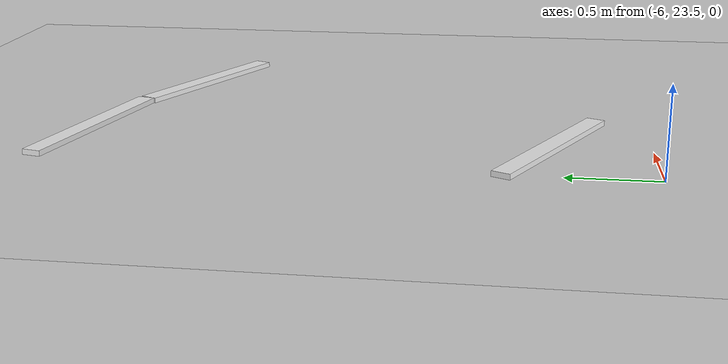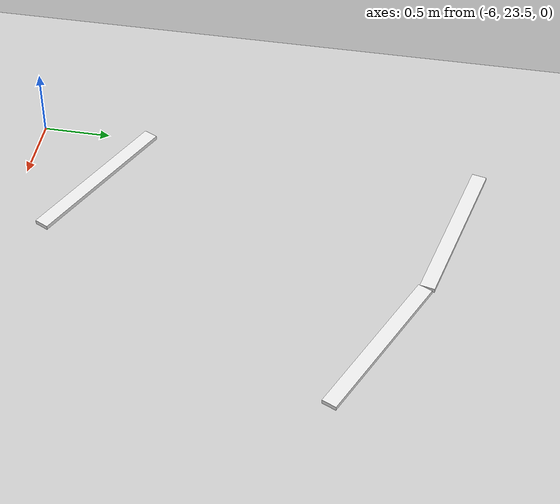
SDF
<sdf version="1.7">
 <world name="default">
  <model name="ground_plane">
   <static>1</static>
   <link name="link">
    <collision name="collision">
     <geometry><plane><normal>0 0 1</normal><size>100 100</size></plane></geometry>
     <surface><friction><ode><mu>100</mu><mu2>50</mu2></ode></friction></surface>
    </collision>
    <visual name="visual">
     <cast_shadows>0</cast_shadows>
     <geometry><plane><normal>0 0 1</normal><size>100 100</size></plane></geometry>
     <material>
      <script><uri>file://media/materials/scripts/gazebo.material</uri><name>Gazebo/Grey</name></script>
     </material>
    </visual>
   </link>
  </model>
  <model name="road_way_clone_clone_clone_0_clone">
   <link name="link">
    <inertial>
     <mass>1</mass>
     <inertia>
      <ixx>0.166667</ixx>
      <ixy>0</ixy>
      <ixz>0</ixz>
      <iyy>0.166667</iyy>
      <iyz>0</iyz>
      <izz>0.166667</izz>
     </inertia>
    </inertial>
    <visual name="visual">
     <geometry><box><size>0.106644 1.22348 0.03129</size></box></geometry>
     <material>
      <script><name>Gazebo/White</name><uri>file://media/materials/scripts/gazebo.material</uri></script>
      <shader type="pixel"><normal_map>__default__</normal_map></shader>
      <ambient>1 1 1 1</ambient>
      <diffuse>1 1 1 1</diffuse>
      <specular>0 0 0 1</specular>
      <emissive>0 0 0 1</emissive>
     </material>
    </visual>
    <collision name="collision">
     <geometry><box><size>0.10644 1.22348 0.03129</size></box></geometry>
     <surface>
      <friction>
       <ode><mu>1</mu><mu2>1</mu2><fdir1>0 0 0</fdir1><slip1>0</slip1><slip2>0</slip2></ode>
       <torsional>
        <coefficient>1</coefficient>
        <patch_radius>0</patch_radius>
        <surface_radius>0</surface_radius>
        <use_patch_radius>1</use_patch_radius>
        <ode><slip>0</slip></ode>
       </torsional>
      </friction>
      <bounce><restitution_coefficient>0</restitution_coefficient><threshold>1e+06</threshold></bounce>
      <contact>
       <collide_without_contact>0</collide_without_contact>
       <collide_without_contact_bitmask>1</collide_without_contact_bitmask>
       <collide_bitmask>1</collide_bitmask>
       <ode>
        <soft_cfm>0</soft_cfm>
        <soft_erp>0.2</soft_erp>
        <kp>1e+13</kp>
        <kd>1</kd>
        <max_vel>0.01</max_vel>
        <min_depth>0</min_depth>
       </ode>
       <bullet>
        <split_impulse>1</split_impulse>
        <split_impulse_penetration_threshold>-0.01</split_impulse_penetration_threshold>
        <soft_cfm>0</soft_cfm>
        <soft_erp>0.2</soft_erp>
        <kp>1e+13</kp>
        <kd>1</kd>
       </bullet>
      </contact>
     </surface>
    </collision>
   </link>
   <static>0</static>
   <pose>-5.49904 24.041 0.015638 -1.1e-05 -0 1.11182</pose>
  </model>
  <model name="road_way_clone_clone_clone_clone_clone_clone_0_clone">
   <link name="link">
    <inertial>
     <mass>1</mass>
     <inertia>
      <ixx>0.166667</ixx>
      <ixy>0</ixy>
      <ixz>0</ixz>
      <iyy>0.166667</iyy>
      <iyz>0</iyz>
      <izz>0.166667</izz>
     </inertia>
    </inertial>
    <visual name="visual">
     <geometry><box><size>0.106644 1.22348 0.03129</size></box></geometry>
     <material>
      <script><name>Gazebo/White</name><uri>file://media/materials/scripts/gazebo.material</uri></script>
      <shader type="pixel"><normal_map>__default__</normal_map></shader>
      <ambient>1 1 1 1</ambient>
      <diffuse>1 1 1 1</diffuse>
      <specular>0 0 0 1</specular>
      <emissive>0 0 0 1</emissive>
     </material>
    </visual>
    <collision name="collision">
     <geometry><box><size>0.10644 1.22348 0.03129</size></box></geometry>
     <surface>
      <friction>
       <ode><mu>1</mu><mu2>1</mu2><fdir1>0 0 0</fdir1><slip1>0</slip1><slip2>0</slip2></ode>
       <torsional>
        <coefficient>1</coefficient>
        <patch_radius>0</patch_radius>
        <surface_radius>0</surface_radius>
        <use_patch_radius>1</use_patch_radius>
        <ode><slip>0</slip></ode>
       </torsional>
      </friction>
      <bounce><restitution_coefficient>0</restitution_coefficient><threshold>1e+06</threshold></bounce>
      <contact>
       <collide_without_contact>0</collide_without_contact>
       <collide_without_contact_bitmask>1</collide_without_contact_bitmask>
       <collide_bitmask>1</collide_bitmask>
       <ode>
        <soft_cfm>0</soft_cfm>
        <soft_erp>0.2</soft_erp>
        <kp>1e+13</kp>
        <kd>1</kd>
        <max_vel>0.01</max_vel>
        <min_depth>0</min_depth>
       </ode>
       <bullet>
        <split_impulse>1</split_impulse>
        <split_impulse_penetration_threshold>-0.01</split_impulse_penetration_threshold>
        <soft_cfm>0</soft_cfm>
        <soft_erp>0.2</soft_erp>
        <kp>1e+13</kp>
        <kd>1</kd>
       </bullet>
      </contact>
     </surface>
    </collision>
   </link>
   <static>0</static>
   <pose>-4.24827 26.2619 0.015638 -1.1e-05 0 1.14892</pose>
  </model>
  <model name="road_way_clone_clone_clone_clone_clone_clone_0_clone_0">
   <link name="link">
    <inertial>
     <mass>1</mass>
     <inertia>
      <ixx>0.166667</ixx>
      <ixy>0</ixy>
      <ixz>0</ixz>
      <iyy>0.166667</iyy>
      <iyz>0</iyz>
      <izz>0.166667</izz>
     </inertia>
    </inertial>
    <visual name="visual">
     <geometry><box><size>0.106644 1.22348 0.03129</size></box></geometry>
     <material>
      <script><name>Gazebo/White</name><uri>file://media/materials/scripts/gazebo.material</uri></script>
      <shader type="pixel"><normal_map>__default__</normal_map></shader>
      <ambient>1 1 1 1</ambient>
      <diffuse>1 1 1 1</diffuse>
      <specular>0 0 0 1</specular>
      <emissive>0 0 0 1</emissive>
     </material>
    </visual>
    <collision name="collision">
     <geometry><box><size>0.10644 1.22348 0.03129</size></box></geometry>
     <surface>
      <friction>
       <ode><mu>1</mu><mu2>1</mu2><fdir1>0 0 0</fdir1><slip1>0</slip1><slip2>0</slip2></ode>
       <torsional>
        <coefficient>1</coefficient>
        <patch_radius>0</patch_radius>
        <surface_radius>0</surface_radius>
        <use_patch_radius>1</use_patch_radius>
        <ode><slip>0</slip></ode>
       </torsional>
      </friction>
      <bounce><restitution_coefficient>0</restitution_coefficient><threshold>1e+06</threshold></bounce>
      <contact>
       <collide_without_contact>0</collide_without_contact>
       <collide_without_contact_bitmask>1</collide_without_contact_bitmask>
       <collide_bitmask>1</collide_bitmask>
       <ode>
        <soft_cfm>0</soft_cfm>
        <soft_erp>0.2</soft_erp>
        <kp>1e+13</kp>
        <kd>1</kd>
        <max_vel>0.01</max_vel>
        <min_depth>0</min_depth>
       </ode>
       <bullet>
        <split_impulse>1</split_impulse>
        <split_impulse_penetration_threshold>-0.01</split_impulse_penetration_threshold>
        <soft_cfm>0</soft_cfm>
        <soft_erp>0.2</soft_erp>
        <kp>1e+13</kp>
        <kd>1</kd>
       </bullet>
      </contact>
     </surface>
    </collision>
   </link>
   <static>0</static>
   <pose>-5.40961 26.6583 0.015638 -1.1e-05 0 1.34943</pose>
  </model>
 </world>
</sdf>
